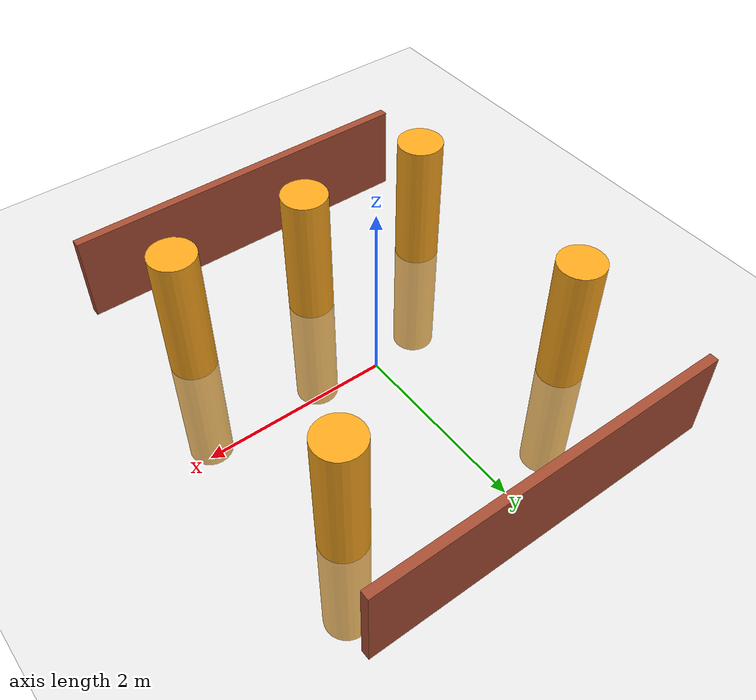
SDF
<?xml version="1.0" ?>
<sdf version="1.6">
  <world name="myWorld">
<include>
      <uri>model://ground_plane</uri>
    </include>
 <gravity>0 0 -9.81</gravity>

<!-- Global light source -->
   <include>
      <uri>model://sun</uri>
    </include>

  <!-- BRICK WALLS -->
<include>
      <uri>model://brick_wall</uri>
      <name>wall1</name>
      <pose>0 -2.5 0 0 0 0</pose>
    </include>
<include>
      <uri>model://brick_wall</uri>
      <name>wall2</name>
      <pose>0 2.5 0 0 0 0</pose>
    </include>

<!-- ORANGE POLES -->
    <include>
      <uri>model://orange_pole</uri>
      <name>orange_pole1</name>
      <pose>-1.5 -1.2 0 0 0 0</pose>
    </include>
<include>
      <uri>model://orange_pole</uri>
      <name>orange_pole2</name>
      <pose>0 -1.2 0 0 0 0</pose>
    </include>
 <include>
      <uri>model://orange_pole</uri>
      <name>orange_pole3</name>
      <pose>-1.5 1.2 0 0 0 0</pose>
    </include>
    <include>
      <uri>model://orange_pole</uri>
      <name>orange_pole4</name>
      <pose>1.5 -1.2 0 0 0 0</pose>
    </include>
    <include>
      <uri>model://orange_pole</uri>
      <name>orange_pole5</name>
      <pose>1.5 1.5 0 0 0 0</pose>
    </include>

    <gui fullscreen='0'>
      <camera name='user_camera'>
        <pose>-0.1414 4.5261 8.762 0.000003 1.059643 -1.566994</pose>
        <view_controller>orbit</view_controller>
      </camera>
    </gui>
  </world>
</sdf>

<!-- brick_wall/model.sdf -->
<sdf version='1.6'>
  <model name='brick_wall'>
    <pose frame=''>-1.125 -3.12 0 0 -0 0</pose>
    <link name='Wall_2'>
      <collision name='Wall_2_Collision'>
                <pose frame=''>0 0 0.5 0 -0 0</pose>
<geometry>
          <box>
            <size>4 0.10 1.0</size>
          </box>
        </geometry>
      </collision>
      <visual name='Wall_2_Visual'>
        <pose frame=''>0 0 0.5 0 -0 0</pose>
        <geometry>
          <box>
            <size>4 0.10 1.0</size>
          </box>
        </geometry>
        <material>
          <script>
            <uri>file://media/materials/scripts/gazebo.material</uri>
            <name>Gazebo/Bricks</name>
          </script>
          <ambient>1 1 1 1</ambient>
        </material>
        <meta>
          <layer>0</layer>
        </meta>
      </visual>
      <pose frame=''>0 0 0 0 -0 0</pose>
    </link>
    <static>1</static>
  </model>
</sdf>

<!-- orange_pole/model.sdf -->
<sdf version='1.6'>

  <model name='orange_pole'>

    <pose>0 0 1.5 0 0 0</pose>
    <link name='pole'>
      <inertial>
        <mass>1</mass>
        <inertia>
          <ixx>0.145833</ixx>
          <iyy>0.145833</iyy>
          <izz>0.125</izz>
          <ixy>0</ixy>
          <ixz>0</ixz>
          <iyz>0</iyz>
        </inertia>
      </inertial>

      <gravity>0</gravity>
      <self_collide>0</self_collide>
      <kinematic>0</kinematic>
      <enable_wind>true</enable_wind>

      <visual name='pole_visual'>
        <geometry>
          <cylinder>
            <radius>0.25</radius>
            <length>3</length>
          </cylinder>
        </geometry>
        <material>
          <lighting>1</lighting>
          <script>
            <uri>file://media/materials/scripts/gazebo.material</uri>
            <name>Gazebo/Grey</name>
          </script>
          <shader type='vertex'>
            <normal_map>__default__</normal_map>
          </shader>
          <ambient>0.88 0.59 0.11 1</ambient>
          <diffuse>0.99 0.66 0.12 1</diffuse>
          <specular>0.01 0.01 0.01 1</specular>
          <emissive>0 0 0 1</emissive>

        </material>
        <transparency>0</transparency>
        <cast_shadows>1</cast_shadows>
      </visual>

      <collision name='collision'>
        <geometry>
          <cylinder>
            <radius>0.25</radius>
            <length>3</length>
          </cylinder>
        </geometry>
      </collision>
    </link>

    <static>0</static>

    <!-- Dynamic obstacle plugin -->
  </model>
</sdf>
